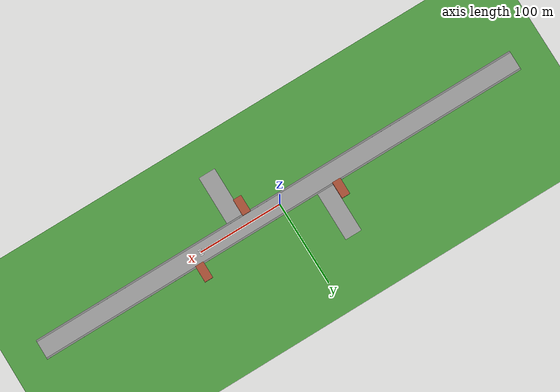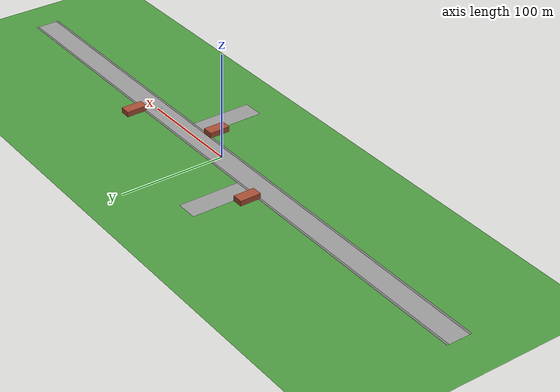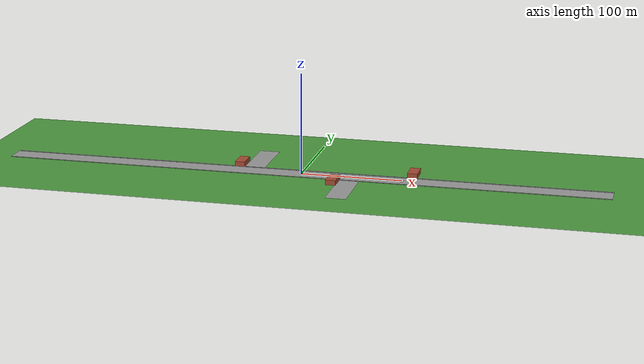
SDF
<sdf version="1.6">
 <world name="runway_world">
  <scene>
   <ambient>0.6 0.6 0.6 1</ambient>
   <background>0.69 0.87 1 1</background>
   <shadows>true</shadows>
   <sky><clouds><speed>8</speed></clouds></sky>
  </scene>
  <include><uri>model://sun</uri></include>
  <model name="textured_ground">
   <static>true</static>
   <link name="ground_link">
    <collision name="collision">
     <geometry><plane><normal>0 0 1</normal><size>2000 2000</size></plane></geometry>
    </collision>
    <visual name="visual">
     <geometry><plane><normal>0 0 1</normal><size>2000 2000</size></plane></geometry>
     <material>
      <script><uri>file://media/materials/scripts/gazebo.material</uri><name>Gazebo/Grass</name></script>
     </material>
    </visual>
   </link>
  </model>
  <model name="runway_road">
   <static>true</static>
   <pose>0 0 0.01 0 0 0</pose>
   <link name="road_link">
    <visual name="visual">
     <geometry><box><size>600 20 0.02</size></box></geometry>
     <material>
      <script><uri>file://media/materials/scripts/gazebo.material</uri><name>Gazebo/Grey</name></script>
     </material>
    </visual>
   </link>
  </model>
  <model name="runway_road_t_right">
   <static>true</static>
   <pose>50 -40 0.011 0 0 1.5708</pose>
   <link name="link">
    <visual name="visual">
     <geometry><box><size>60 20 0.02</size></box></geometry>
     <material>
      <script><uri>file://media/materials/scripts/gazebo.material</uri><name>Gazebo/Grey</name></script>
     </material>
    </visual>
   </link>
  </model>
  <model name="runway_road_t_left">
   <static>true</static>
   <pose>-50 40 0.011 0 0 1.5708</pose>
   <link name="link">
    <visual name="visual">
     <geometry><box><size>60 20 0.02</size></box></geometry>
     <material>
      <script><uri>file://media/materials/scripts/gazebo.material</uri><name>Gazebo/Grey</name></script>
     </material>
    </visual>
   </link>
  </model>
  <model name="sidewalk_main_left">
   <static>true</static>
   <pose>0 11 0.05 0 0 0</pose>
   <link name="link">
    <visual name="v">
     <geometry><box><size>600 2 0.1</size></box></geometry>
     <material><ambient>0.5 0.5 0.5 1</ambient></material>
    </visual>
   </link>
  </model>
  <model name="sidewalk_main_right">
   <static>true</static>
   <pose>0 -11 0.05 0 0 0</pose>
   <link name="link">
    <visual name="v">
     <geometry><box><size>600 2 0.1</size></box></geometry>
     <material><ambient>0.5 0.5 0.5 1</ambient></material>
    </visual>
   </link>
  </model>
  <model name="building_occlusion">
   <static>true</static>
   <pose>36 -20 2.5 0 0 0</pose>
   <link name="link">
    <collision name="c1"><geometry><box><size>10 20 5</size></box></geometry></collision>
    <visual name="v1">
     <geometry><box><size>10 20 5</size></box></geometry>
     <material>
      <script><uri>file://media/materials/scripts/gazebo.material</uri><name>Gazebo/Bricks</name></script>
     </material>
    </visual>
   </link>
  </model>
  <model name="building_occlusion2">
   <static>true</static>
   <pose>108 20 2.5 0 0 0</pose>
   <link name="link">
    <collision name="c1"><geometry><box><size>10 20 5</size></box></geometry></collision>
    <visual name="v1">
     <geometry><box><size>10 20 5</size></box></geometry>
     <material>
      <script><uri>file://media/materials/scripts/gazebo.material</uri><name>Gazebo/Bricks</name></script>
     </material>
    </visual>
   </link>
  </model>
  <model name="building_occlusion1">
   <static>true</static>
   <pose>-65 20 2.5 0 0 0</pose>
   <link name="link">
    <collision name="c1"><geometry><box><size>10 20 5</size></box></geometry></collision>
    <visual name="v1">
     <geometry><box><size>10 20 5</size></box></geometry>
     <material>
      <script><uri>file://media/materials/scripts/gazebo.material</uri><name>Gazebo/Bricks</name></script>
     </material>
    </visual>
   </link>
  </model>
  <model name="crosswalk_stripes">
   <static>true</static>
   <pose>100 0 0.02 0 0 0</pose>
   <link name="link">
    <visual name="v1">
     <pose>0 -3 0 0 0 0</pose>
     <geometry><box><size>4 1 0.01</size></box></geometry>
     <material><ambient>1 1 1 1</ambient></material>
    </visual>
    <visual name="v2">
     <geometry><box><size>4 1 0.01</size></box></geometry>
     <material><ambient>1 1 1 1</ambient></material>
    </visual>
    <visual name="v3">
     <pose>0 3 0 0 0 0</pose>
     <geometry><box><size>4 1 0.01</size></box></geometry>
     <material><ambient>1 1 1 1</ambient></material>
    </visual>
   </link>
  </model>
  <plugin name="gazebo_ros_state" filename="libgazebo_ros_state.so">
   <ros><namespace>/gazebo</namespace></ros>
  </plugin>
 </world>
</sdf>
